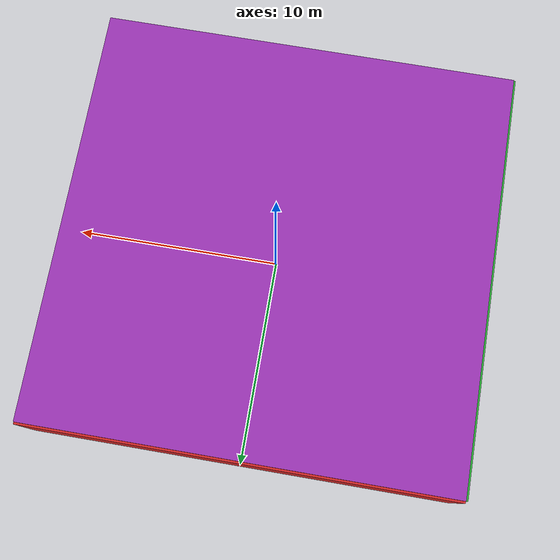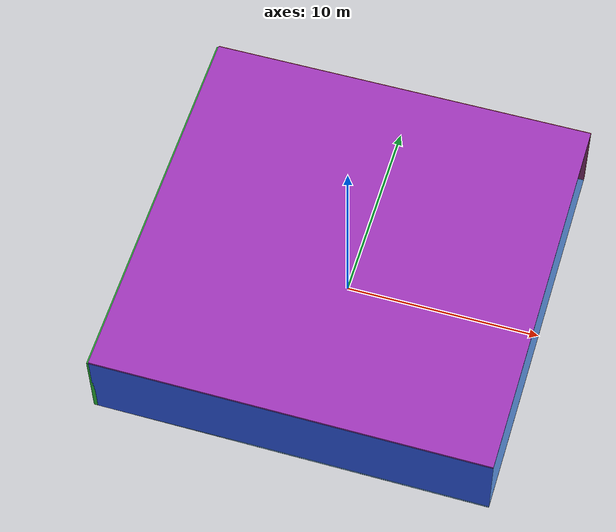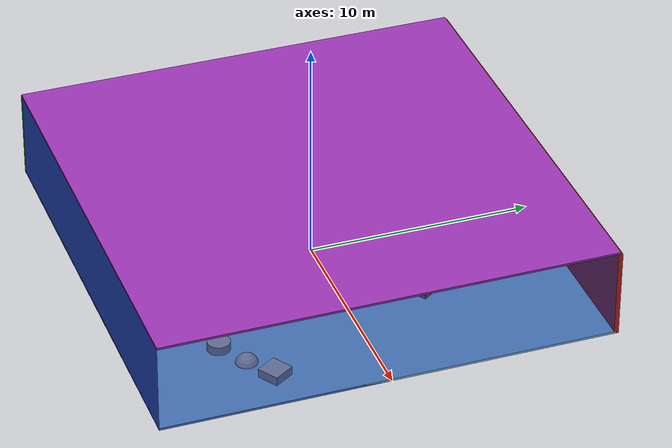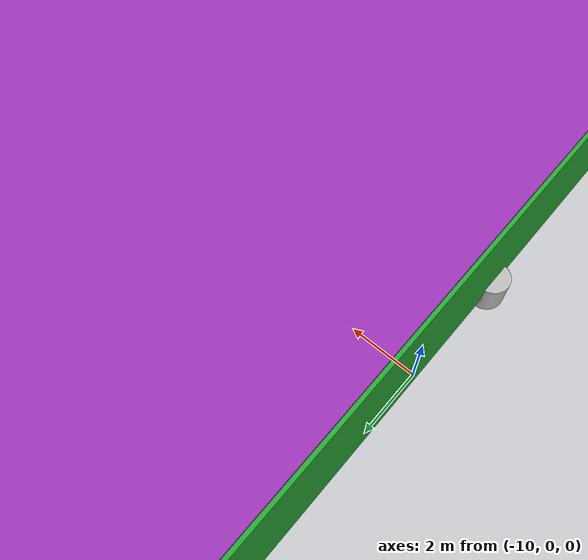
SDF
<sdf version="1.4">
 <world name="default">
  <physics type="ode">
   <max_step_size>0.001</max_step_size>
   <real_time_factor>1</real_time_factor>
   <real_time_update_rate>1000</real_time_update_rate>
   <gravity>0 0 -9.8</gravity>
  </physics>
  <scene><ambient>0.4 0.4 0.4 1</ambient><background>0.7 0.7 0.7 1</background><shadows>1</shadows></scene>
  <model name="Surrounding">
   <static>1</static>
   <link name="Ceiling">
    <collision name="Ceiling_Collision"><geometry><box><size>20 20 0.1</size></box></geometry></collision>
    <visual name="Ceiling_Visual">
     <geometry><box><size>20 20 0.1</size></box></geometry>
     <material>
      <script><uri>file://media/materials/scripts/gazebo.material</uri><name>Gazebo/PurpleGlow</name></script>
     </material>
    </visual>
    <pose>0 0 4.05 0 0 0</pose>
   </link>
   <link name="Wall_South">
    <collision name="Wall_South_Collision">
     <geometry><box><size>20 0 4</size></box></geometry>
     <pose>0 0 2 0 -0 0</pose>
    </collision>
    <visual name="Wall_South_Visual">
     <pose>0 0 2 0 -0 0</pose>
     <geometry><box><size>20 0 4</size></box></geometry>
     <material>
      <script><uri>file://media/materials/scripts/gazebo.material</uri><name>Gazebo/BlueGlow</name></script>
     </material>
    </visual>
    <velocity_decay><linear>0</linear><angular>0</angular></velocity_decay>
    <pose>0 -10 0 0 -0 0</pose>
   </link>
   <link name="Wall_East">
    <collision name="Wall_21_Collision">
     <geometry><box><size>20 0 4</size></box></geometry>
     <pose>0 0 2 0 -0 0</pose>
    </collision>
    <visual name="Wall_21_Visual">
     <pose>0 0 2 0 -0 0</pose>
     <geometry><box><size>20 0 4</size></box></geometry>
     <material>
      <script><uri>file://media/materials/scripts/gazebo.material</uri><name>Gazebo/BlueTransparent</name></script>
     </material>
    </visual>
    <velocity_decay><linear>0</linear><angular>0</angular></velocity_decay>
    <pose>10 0 0 0 -0 1.5708</pose>
   </link>
   <link name="Wall_North">
    <collision name="Wall_22_Collision">
     <geometry><box><size>20 0.2 4</size></box></geometry>
     <pose>0 0 2 0 -0 0</pose>
    </collision>
    <visual name="Wall_22_Visual">
     <pose>0 0 2 0 -0 0</pose>
     <geometry><box><size>20 0.2 4</size></box></geometry>
     <material>
      <script><uri>file://media/materials/scripts/gazebo.material</uri><name>Gazebo/Red</name></script>
     </material>
    </visual>
    <velocity_decay><linear>0</linear><angular>0</angular></velocity_decay>
    <pose>0 10 0 0 -0 0</pose>
   </link>
   <link name="Wall_West">
    <collision name="Wall_23_Collision">
     <geometry><box><size>20 0.2 4</size></box></geometry>
     <pose>0 0 2 0 -0 0</pose>
    </collision>
    <visual name="Wall_23_Visual">
     <pose>0 0 2 0 -0 0</pose>
     <geometry><box><size>20 0.2 4</size></box></geometry>
     <material>
      <script><uri>file://media/materials/scripts/gazebo.material</uri><name>Gazebo/Green</name></script>
     </material>
    </visual>
    <velocity_decay><linear>0</linear><angular>0</angular></velocity_decay>
    <pose>-10 0 0 0 0 -1.5708</pose>
   </link>
   <link name="Ground_link">
    <collision name="collision">
     <pose>0 0 .05 0 -0 0</pose>
     <geometry><box><size>20 20 0.1</size></box></geometry>
    </collision>
    <visual name="visual">
     <pose>0 0 .05 0 -0 0</pose>
     <geometry><box><size>20 20 0.1</size></box></geometry>
     <material>
      <script><uri>file://media/materials/scripts/gazebo.material</uri><name>Gazebo/SkyBlue</name></script>
     </material>
    </visual>
   </link>
   <static>1</static>
  </model>
  <spherical_coordinates>
   <surface_model>EARTH_WGS84</surface_model>
   <latitude_deg>0</latitude_deg>
   <longitude_deg>0</longitude_deg>
   <elevation>0</elevation>
   <heading_deg>0</heading_deg>
  </spherical_coordinates>
  <light name="lightball_0" type="diffuse">
   <diffuse>0.8 0.8 0.8 1</diffuse>
   <specular>0.2 0.2 0.2 1</specular>
   <attenuation>
    <range>100</range>
    <constant>0.7</constant>
    <linear>0.01</linear>
    <quadratic>0.001</quadratic>
   </attenuation>
   <direction>-0.5 0.1 -0.9</direction>
   <pose>2.93608727702 5.00057955885 3.70124728361 0 0 0</pose>
  </light>
  <light name="lightball_1" type="diffuse">
   <diffuse>0.8 0.8 0.8 1</diffuse>
   <specular>0.2 0.2 0.2 1</specular>
   <attenuation>
    <range>100</range>
    <constant>0.7</constant>
    <linear>0.01</linear>
    <quadratic>0.001</quadratic>
   </attenuation>
   <direction>-0.5 0.1 -0.9</direction>
   <pose>0.98692407386 9.36628995184 3.40746624978 0 0 0</pose>
  </light>
  <light name="lightball_2" type="diffuse">
   <diffuse>0.8 0.8 0.8 1</diffuse>
   <specular>0.2 0.2 0.2 1</specular>
   <attenuation>
    <range>100</range>
    <constant>0.7</constant>
    <linear>0.01</linear>
    <quadratic>0.001</quadratic>
   </attenuation>
   <direction>-0.5 0.1 -0.9</direction>
   <pose>5.66264975213 -9.75898877927 2.5296381544 0 0 0</pose>
  </light>
  <light name="lightball_3" type="diffuse">
   <diffuse>0.8 0.8 0.8 1</diffuse>
   <specular>0.2 0.2 0.2 1</specular>
   <attenuation>
    <range>100</range>
    <constant>0.7</constant>
    <linear>0.01</linear>
    <quadratic>0.001</quadratic>
   </attenuation>
   <direction>-0.5 0.1 -0.9</direction>
   <pose>-8.47778443338 6.14222889679 0.522124386199 0 0 0</pose>
  </light>
  <light name="lightball_4" type="diffuse">
   <diffuse>0.8 0.8 0.8 1</diffuse>
   <specular>0.2 0.2 0.2 1</specular>
   <attenuation>
    <range>100</range>
    <constant>0.7</constant>
    <linear>0.01</linear>
    <quadratic>0.001</quadratic>
   </attenuation>
   <direction>-0.5 0.1 -0.9</direction>
   <pose>-4.3421368055 -0.337975315034 0.673345412303 0 0 0</pose>
  </light>
  <light name="lightball_5" type="diffuse">
   <diffuse>0.8 0.8 0.8 1</diffuse>
   <specular>0.2 0.2 0.2 1</specular>
   <attenuation>
    <range>100</range>
    <constant>0.7</constant>
    <linear>0.01</linear>
    <quadratic>0.001</quadratic>
   </attenuation>
   <direction>-0.5 0.1 -0.9</direction>
   <pose>-4.9323835931 9.56789939145 1.0552166231 0 0 0</pose>
  </light>
  <light name="lightball_6" type="diffuse">
   <diffuse>0.8 0.8 0.8 1</diffuse>
   <specular>0.2 0.2 0.2 1</specular>
   <attenuation>
    <range>100</range>
    <constant>0.7</constant>
    <linear>0.01</linear>
    <quadratic>0.001</quadratic>
   </attenuation>
   <direction>-0.5 0.1 -0.9</direction>
   <pose>2.22648756226 1.75310139272 1.74833522556 0 0 0</pose>
  </light>
  <light name="lightball_7" type="diffuse">
   <diffuse>0.8 0.8 0.8 1</diffuse>
   <specular>0.2 0.2 0.2 1</specular>
   <attenuation>
    <range>100</range>
    <constant>0.7</constant>
    <linear>0.01</linear>
    <quadratic>0.001</quadratic>
   </attenuation>
   <direction>-0.5 0.1 -0.9</direction>
   <pose>-7.2143251248 4.2638383709 2.39074047744 0 0 0</pose>
  </light>
  <light name="lightball_8" type="diffuse">
   <diffuse>0.8 0.8 0.8 1</diffuse>
   <specular>0.2 0.2 0.2 1</specular>
   <attenuation>
    <range>100</range>
    <constant>0.7</constant>
    <linear>0.01</linear>
    <quadratic>0.001</quadratic>
   </attenuation>
   <direction>-0.5 0.1 -0.9</direction>
   <pose>8.88289569398 0.399722530652 3.5548694811 0 0 0</pose>
  </light>
  <light name="lightball_9" type="diffuse">
   <diffuse>0.8 0.8 0.8 1</diffuse>
   <specular>0.2 0.2 0.2 1</specular>
   <attenuation>
    <range>100</range>
    <constant>0.7</constant>
    <linear>0.01</linear>
    <quadratic>0.001</quadratic>
   </attenuation>
   <direction>-0.5 0.1 -0.9</direction>
   <pose>7.8466477436 8.82476160747 1.24446555851 0 0 0</pose>
  </light>
  <light name="lightball_10" type="diffuse">
   <diffuse>0.8 0.8 0.8 1</diffuse>
   <specular>0.2 0.2 0.2 1</specular>
   <attenuation>
    <range>100</range>
    <constant>0.7</constant>
    <linear>0.01</linear>
    <quadratic>0.001</quadratic>
   </attenuation>
   <direction>-0.5 0.1 -0.9</direction>
   <pose>-3.87061749514 -3.14317204044 2.58387820311 0 0 0</pose>
  </light>
  <light name="lightball_11" type="diffuse">
   <diffuse>0.8 0.8 0.8 1</diffuse>
   <specular>0.2 0.2 0.2 1</specular>
   <attenuation>
    <range>100</range>
    <constant>0.7</constant>
    <linear>0.01</linear>
    <quadratic>0.001</quadratic>
   </attenuation>
   <direction>-0.5 0.1 -0.9</direction>
   <pose>-6.84381753441 -8.75419230387 2.2245170321 0 0 0</pose>
  </light>
  <include>
   <uri>model://textured_shapes</uri>
   <pose>-8.52877306026 -3.45340980783 0 0 0 1.5722698795</pose>
  </include>
  <include>
   <uri>model://robocup_3Dsim_goal</uri>
   <pose>-8.05252652879 -0.396092171678 0 0 0 1.64332168916</pose>
  </include>
  <include><uri>model://cabinet</uri><pose>-6.55125892327 5.65325964015 0 0 0 0.374215535905</pose></include>
  <include><uri>model://cabinet</uri><pose>-8.33355195799 6.53515576615 0 0 0 1.40401593815</pose></include>
  <include><uri>model://cabinet</uri><pose>-1.48716391087 -7.60612370787 0 0 0 1.69661751794</pose></include>
  <include>
   <uri>model://textured_shapes</uri>
   <pose>2.01346811258 -3.94939837289 0 0 0 2.38342506981</pose>
  </include>
  <include>
   <uri>model://construction_cone</uri>
   <pose>3.78891244201 0.972977909308 0 0 0 0.332035727962</pose>
  </include>
  <include><uri>model://cabinet</uri><pose>4.86233624616 3.37616952677 0 0 0 0.561404334111</pose></include>
  <include>
   <uri>model://textured_shapes</uri>
   <pose>6.9187429705 -5.25066047286 0 0 0 2.13182521742</pose>
  </include>
 </world>
</sdf>

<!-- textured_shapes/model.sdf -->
<sdf version="1.6">
  <model name="textured_shapes">
    <pose>0 0 0.5 0 0 0</pose>
    <link name="box">
      <pose>0 -1.5 0 0 0 0</pose>
      <collision name="collision">
        <geometry>
          <box>
            <size>1 1 1</size>
          </box>
        </geometry>
      </collision>
      <visual name="visual">
        <geometry>
          <box>
            <size>1 1 1</size>
          </box>
        </geometry>
        <material>
          <script>
            <uri>model://../model_source/models/textured_shapes/materials/scripts</uri>
            <uri>model://../model_source/models/textured_shapes/materials/textures</uri>
            <name>TexturedShape/Squares</name>
          </script>
        </material>
      </visual>
    </link>
    <link name="sphere">
      <collision name="collision">
        <geometry>
          <sphere>
            <radius>0.5</radius>
          </sphere>
        </geometry>
      </collision>
      <visual name="visual">
        <geometry>
          <sphere>
            <radius>0.5</radius>
          </sphere>
        </geometry>
        <material>
          <script>
            <uri>model://../model_source/models/textured_shapes/materials/scripts</uri>
            <uri>model://../model_source/models/textured_shapes/materials/textures</uri>
            <name>TexturedShape/Squares</name>
          </script>
        </material>
      </visual>
    </link>
    <link name="cylinder">
      <pose>0 1.5 0 0 0 0</pose>
      <collision name="collision">
        <geometry>
          <cylinder>
            <radius>0.5</radius>
            <length>1</length>
          </cylinder>
        </geometry>
      </collision>
      <visual name="visual">
        <geometry>
          <cylinder>
            <radius>0.5</radius>
            <length>1</length>
          </cylinder>
        </geometry>
        <material>
          <script>
            <uri>model://../model_source/models/textured_shapes/materials/scripts</uri>
            <uri>model://../model_source/models/textured_shapes/materials/textures</uri>
            <name>TexturedShape/Squares</name>
          </script>
        </material>
      </visual>
    </link>
  </model>
</sdf>

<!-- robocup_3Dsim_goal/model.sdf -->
<sdf version="1.5">
  <model name="robocup_3d_goal">
    <static>true</static>
    <link name="left_post">
      <pose>0 1.05 0.45 0 0 0</pose>
      <collision name="collision">
        <geometry>
          <cylinder>
            <radius>0.05</radius>
            <length>0.9</length>
          </cylinder>
        </geometry>
      </collision>
      <visual name="visual">
        <geometry>
          <cylinder>
            <radius>0.05</radius>
            <length>0.9</length>
          </cylinder>
        </geometry>
        <material>
          <script>
            <uri>file://media/materials/scripts/gazebo.material</uri>
            <name>Gazebo/ZincYellow</name>
          </script>
        </material>
      </visual>
    </link>
    <link name="left_support_horiz_lower">
      <pose>0.30 1.05 0.01 0 0 0</pose>
      <collision name="collision">
        <geometry>
          <box>
            <size>0.50 0.02 0.02</size>
          </box>
        </geometry>
      </collision>
      <visual name="visual">
        <geometry>
          <box>
            <size>0.50 0.02 0.02</size>
          </box>
        </geometry>
        <material>
          <script>
            <uri>file://media/materials/scripts/gazebo.material</uri>
            <name>Gazebo/White</name>
          </script>
        </material>
      </visual>
    </link>
    <link name="left_support_horiz_upper">
      <pose>0.30 1.05 0.79 0 0 0</pose>
      <collision name="collision">
        <geometry>
          <box>
            <size>0.50 0.02 0.02</size>
          </box>
        </geometry>
      </collision>
      <visual name="visual">
        <geometry>
          <box>
            <size>0.50 0.02 0.02</size>
          </box>
        </geometry>
        <material>
          <script>
            <uri>file://media/materials/scripts/gazebo.material</uri>
            <name>Gazebo/White</name>
          </script>
        </material>
      </visual>
    </link>
    <link name="left_support_vertical">
      <pose>0.56 1.05 0.4 0 1.5708 0</pose>
      <collision name="collision">
        <geometry>
          <box>
            <size>0.80 0.02 0.02</size>
          </box>
        </geometry>
      </collision>
      <visual name="visual">
        <geometry>
          <box>
            <size>0.80 0.02 0.02</size>
          </box>
        </geometry>
        <material>
          <script>
            <uri>file://media/materials/scripts/gazebo.material</uri>
            <name>Gazebo/White</name>
          </script>
        </material>
      </visual>
    </link>
    <link name="right_support_horiz_lower">
      <pose>0.30 -1.05 0.01 0 0 0</pose>
      <collision name="collision">
        <geometry>
          <box>
            <size>0.50 0.02 0.02</size>
          </box>
        </geometry>
      </collision>
      <visual name="visual">
        <geometry>
          <box>
            <size>0.50 0.02 0.02</size>
          </box>
        </geometry>
        <material>
          <script>
            <uri>file://media/materials/scripts/gazebo.material</uri>
            <name>Gazebo/White</name>
          </script>
        </material>
      </visual>
    </link>
    <link name="right_support_horiz_upper">
      <pose>0.30 -1.05 0.79 0 0 0</pose>
      <collision name="collision">
        <geometry>
          <box>
            <size>0.50 0.02 0.02</size>
          </box>
        </geometry>
      </collision>
      <visual name="visual">
        <geometry>
          <box>
            <size>0.50 0.02 0.02</size>
          </box>
        </geometry>
        <material>
          <script>
            <uri>file://media/materials/scripts/gazebo.material</uri>
            <name>Gazebo/White</name>
          </script>
        </material>
      </visual>
    </link>
    <link name="right_support_vertical">
      <pose>0.56 -1.05 0.4 0 1.5708 0</pose>
      <collision name="collision">
        <geometry>
          <box>
            <size>0.80 0.02 0.02</size>
          </box>
        </geometry>
      </collision>
      <visual name="visual">
        <geometry>
          <box>
            <size>0.80 0.02 0.02</size>
          </box>
        </geometry>
        <material>
          <script>
            <uri>file://media/materials/scripts/gazebo.material</uri>
            <name>Gazebo/White</name>
          </script>
        </material>
      </visual>
    </link>
    <link name="center_support_horiz_lower">
      <pose>0.56 0 0.01 0 1.5708 0</pose>
      <collision name="collision">
        <geometry>
          <box>
            <size>0.02 2.08 0.02</size>
          </box>
        </geometry>
      </collision>
      <visual name="visual">
        <geometry>
          <box>
            <size>0.02 2.08 0.02</size>
          </box>
        </geometry>
        <material>
          <script>
            <uri>file://media/materials/scripts/gazebo.material</uri>
            <name>Gazebo/White</name>
          </script>
        </material>
      </visual>
    </link>
    <link name="center_support_horiz_upper">
      <pose>0.56 0 0.79 0 1.5708 0</pose>
      <collision name="collision">
        <geometry>
          <box>
            <size>0.02 2.08 0.02</size>
          </box>
        </geometry>
      </collision>
      <visual name="visual">
        <geometry>
          <box>
            <size>0.02 2.08 0.02</size>
          </box>
        </geometry>
        <material>
          <script>
            <uri>file://media/materials/scripts/gazebo.material</uri>
            <name>Gazebo/White</name>
          </script>
        </material>
      </visual>
    </link>
    <link name="right_post">
      <pose>0 -1.05 0.45 0 0 0</pose>
      <collision name="collision">
        <geometry>
          <cylinder>
            <radius>0.05</radius>
            <length>0.9</length>
          </cylinder>
        </geometry>
      </collision>
      <visual name="visual">
        <geometry>
          <cylinder>
            <radius>0.05</radius>
            <length>0.9</length>
          </cylinder>
        </geometry>
        <material>
          <script>
            <uri>file://media/materials/scripts/gazebo.material</uri>
            <name>Gazebo/ZincYellow</name>
          </script>
        </material>
      </visual>
    </link>
    <link name="crossbar">
      <pose>0 0 0.85 1.57 1.57 0</pose>
      <collision name="collision">
        <geometry>
          <cylinder>
            <radius>0.05</radius>
            <length>2.0</length>
          </cylinder>
        </geometry>
      </collision>
      <visual name="visual">
        <geometry>
          <cylinder>
            <radius>0.05</radius>
            <length>2.0</length>
          </cylinder>
        </geometry>
        <material>
          <script>
            <uri>file://media/materials/scripts/gazebo.material</uri>
            <name>Gazebo/ZincYellow</name>
          </script>
        </material>
      </visual>
    </link>
    <link name="center_net">
      <pose>0.56 0 0.40 0 0 0</pose>
      <collision name="collision">
        <geometry>
          <box>
            <size>0.01 2.1 0.80</size>
          </box>
        </geometry>
      </collision>
      <visual name="visual">
        <geometry>
          <box>
            <size>0.01 2.1 0.80</size>
          </box>
        </geometry>
        <material>
          <script>
            <uri>model://../model_source/models/robocup09_spl_field/materials/scripts/</uri>
            <uri>model://../model_source/models/robocup09_spl_field/materials/textures/</uri>
            <name>RoboCup/Net</name>
          </script>
        </material>
      </visual>
    </link>
    <link name="left_net">
      <pose>0.30 1.05 0.40 0 0 0</pose>
      <collision name="collision">
        <geometry>
          <box>
            <size>0.50 0.01 0.76</size>
          </box>
        </geometry>
      </collision>
      <visual name="visual">
        <geometry>
          <box>
            <size>0.50 0.01 0.76</size>
          </box>
        </geometry>
        <material>
          <script>
            <uri>model://../model_source/models/robocup09_spl_field/materials/scripts/</uri>
            <uri>model://../model_source/models/robocup09_spl_field/materials/textures/</uri>
            <name>RoboCup/Net</name>
          </script>
        </material>
      </visual>
    </link>
    <link name="right_net">
      <pose>0.30 -1.05 0.40 0 0 0</pose>
      <collision name="collision">
        <geometry>
          <box>
            <size>0.50 0.01 0.76</size>
          </box>
        </geometry>
      </collision>
      <visual name="visual">
        <geometry>
          <box>
            <size>0.50 0.01 0.76</size>
          </box>
        </geometry>
        <material>
          <script>
            <uri>model://../model_source/models/robocup09_spl_field/materials/scripts/</uri>
            <uri>model://../model_source/models/robocup09_spl_field/materials/textures/</uri>
            <name>RoboCup/Net</name>
          </script>
        </material>
      </visual>
    </link>
  </model>
</sdf>

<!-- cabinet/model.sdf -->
<sdf version="1.5">
  <model name="cabinet">
    <static>true</static>
    <link name="cabinet_bottom_plate">
      <inertial>
        <pose>0 0 -1 0 0 0</pose>
        <inertia>
          <ixx>2.050000</ixx>
          <ixy>0</ixy>
          <ixz>0</ixz>
          <iyy>2.050000</iyy>
          <iyz>0</iyz>
          <izz>2.050000</izz>
        </inertia>
        <mass>25.000000</mass>
      </inertial>
      <collision name="cabinet_bottom_plate_geom">
        <pose>0 0 0.010000 0 0 0</pose>
        <geometry>
          <box>
            <size>0.450000 0.450000 0.020000</size>
          </box>
        </geometry>
      </collision>
      <visual name="cabinet_bottom_plate_geom_visual">
        <pose>0 0 0.010000 0 0 0</pose>
        <geometry>
          <box>
            <size>0.450000 0.450000 0.020000</size>
          </box>
        </geometry>
        <material>
          <script>
            <uri>model://media/materials/scripts/gazebo.material</uri>
            <name>Gazebo/Wood</name>
          </script>
        </material>
      </visual>
      <collision name="cabinet_bottom_plate_geom_cabinet_back_plate">
        <pose>0.235000 0 0.510000 0 0 0</pose>
        <geometry>
          <box>
            <size>0.020000 0.450000 1.020000</size>
          </box>
        </geometry>
      </collision>
      <visual name="cabinet_bottom_plate_geom_cabinet_back_plate_visual">
        <pose>0.235000 0 0.510000 0 0 0</pose>
        <geometry>
          <box>
            <size>0.020000 0.450000 1.020000</size>
          </box>
        </geometry>
        <material>
          <script>
            <uri>model://media/materials/scripts/gazebo.material</uri>
            <name>Gazebo/Wood</name>
          </script>
        </material>
      </visual>
      <collision name="cabinet_bottom_plate_geom_cabinet_left_plate">
        <pose>0 0.235000 0.510000 0 0 0</pose>
        <geometry>
          <box>
            <size>0.450000 0.020000 1.020000</size>
          </box>
        </geometry>
      </collision>
      <visual name="cabinet_bottom_plate_geom_cabinet_left_plate_visual">
        <pose>0 0.235000 0.510000 0 0 0</pose>
        <geometry>
          <box>
            <size>0.450000 0.020000 1.020000</size>
          </box>
        </geometry>
        <material>
          <script>
            <uri>model://media/materials/scripts/gazebo.material</uri>
            <name>Gazebo/Wood</name>
          </script>
        </material>
      </visual>
      <collision name="cabinet_bottom_plate_geom_cabinet_middle_plate">
        <pose>0 0 0.510000 0 0 0</pose>
        <geometry>
          <box>
            <size>0.450000 0.450000 0.020000</size>
          </box>
        </geometry>
      </collision>
      <visual name="cabinet_bottom_plate_geom_cabinet_middle_plate_visual">
        <pose>0 0 0.510000 0 0 0</pose>
        <geometry>
          <box>
            <size>0.450000 0.450000 0.020000</size>
          </box>
        </geometry>
        <material>
          <script>
            <uri>model://media/materials/scripts/gazebo.material</uri>
            <name>Gazebo/Wood</name>
          </script>
        </material>
      </visual>
      <collision name="cabinet_bottom_plate_geom_cabinet_right_plate">
        <pose>0 -0.235000 0.510000 0 0 0</pose>
        <geometry>
          <box>
            <size>0.450000 0.020000 1.020000</size>
          </box>
        </geometry>
      </collision>
      <visual name="cabinet_bottom_plate_geom_cabinet_right_plate_visual">
        <pose>0 -0.235000 0.510000 0 0 0</pose>
        <geometry>
          <box>
            <size>0.450000 0.020000 1.020000</size>
          </box>
        </geometry>
        <material>
          <script>
            <uri>model://media/materials/scripts/gazebo.material</uri>
            <name>Gazebo/Wood</name>
          </script>
        </material>
      </visual>
      <collision name="cabinet_bottom_plate_geom_cabinet_top_plate">
        <pose>0 0 1.010000 0 0 0</pose>
        <geometry>
          <box>
            <size>0.450000 0.450000 0.020000</size>
          </box>
        </geometry>
      </collision>
      <visual name="cabinet_bottom_plate_geom_cabinet_top_plate_visual">
        <pose>0 0 1.010000 0 0 0</pose>
        <geometry>
          <box>
            <size>0.450000 0.450000 0.020000</size>
          </box>
        </geometry>
        <material>
          <script>
            <uri>model://media/materials/scripts/gazebo.material</uri>
            <name>Gazebo/Wood</name>
          </script>
        </material>
      </visual>
    </link>
  </model>
</sdf>

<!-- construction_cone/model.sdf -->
<sdf version="1.5">
  <model name="Construction Cone">
    <link name="link">
      <collision name="collision">
        <geometry>
          <mesh>
            <scale>10 10 10</scale>
            <uri>file://isr-testbed/construction_cone/meshes/construction_cone.dae</uri>
          </mesh>
        </geometry>
      </collision>
      <visual name="visual">
        <geometry>
          <mesh>
            <scale>10 10 10</scale>
            <uri>file://isr-testbed/construction_cone/meshes/construction_cone.dae</uri>
          </mesh>
        </geometry>
      </visual>
    </link>
  </model>
</sdf>
